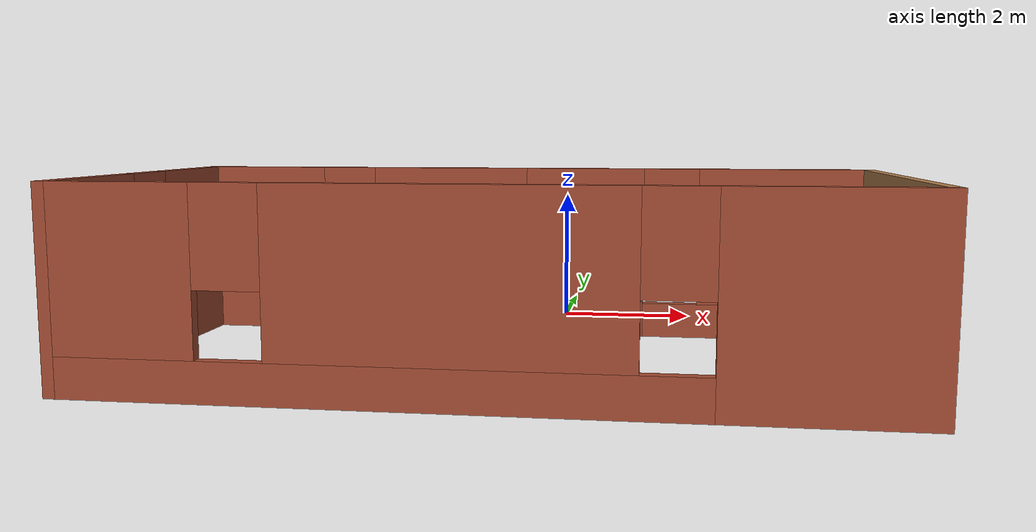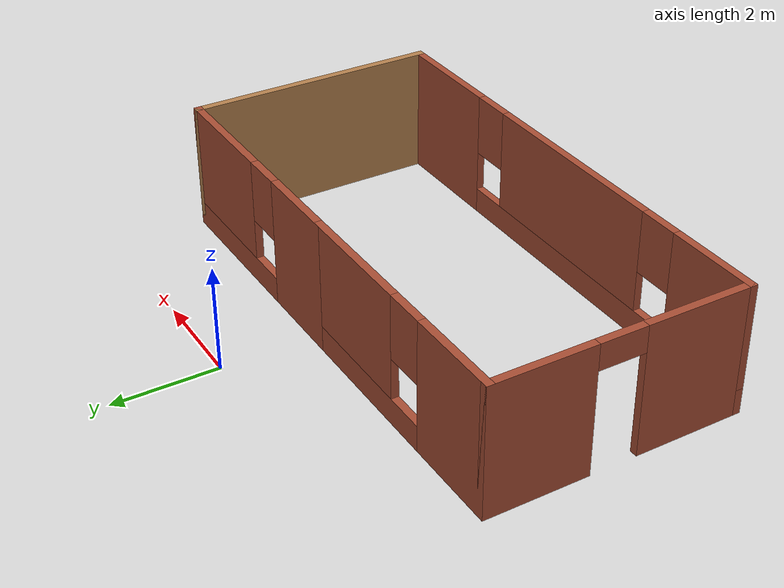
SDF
<?xml version='1.0'?>
<sdf version='1.7'>
  <model name='frist_world'>
    <pose>-0.445 -3.3625 0 0 -0 0</pose>
    <link name='Wall_0'>
      <pose>2.5 1.5625 0 0 -0 0</pose>
      <visual name='Wall_0_Visual_0'>
        <pose>-1.6313 0 1.25 0 -0 0</pose>
        <geometry>
          <box>
            <size>1.7374 0.15 2.5</size>
          </box>
        </geometry>
        <material>
          <script>
            <uri>file://media/materials/scripts/gazebo.material</uri>
            <name>Gazebo/Bricks</name>
          </script>
          <ambient>1 1 1 1</ambient>
        </material>
        <meta>
          <layer>0</layer>
        </meta>
      </visual>
      <collision name='Wall_0_Collision_0'>
        <geometry>
          <box>
            <size>1.7374 0.15 2.5</size>
          </box>
        </geometry>
        <pose>-1.6313 0 1.25 0 -0 0</pose>
      </collision>
      <visual name='Wall_0_Visual_1'>
        <pose>0.868699 0 0.25 0 -0 0</pose>
        <geometry>
          <box>
            <size>3.2626 0.15 0.5</size>
          </box>
        </geometry>
        <material>
          <script>
            <uri>file://media/materials/scripts/gazebo.material</uri>
            <name>Gazebo/Bricks</name>
          </script>
          <ambient>1 1 1 1</ambient>
        </material>
        <meta>
          <layer>0</layer>
        </meta>
      </visual>
      <collision name='Wall_0_Collision_1'>
        <geometry>
          <box>
            <size>3.2626 0.15 0.5</size>
          </box>
        </geometry>
        <pose>0.868699 0 0.25 0 -0 0</pose>
      </collision>
      <visual name='Wall_0_Visual_2'>
        <pose>1.2687 0 1.5 0 -0 0</pose>
        <geometry>
          <box>
            <size>2.4626 0.15 2</size>
          </box>
        </geometry>
        <material>
          <script>
            <uri>file://media/materials/scripts/gazebo.material</uri>
            <name>Gazebo/Bricks</name>
          </script>
          <ambient>1 1 1 1</ambient>
        </material>
        <meta>
          <layer>0</layer>
        </meta>
      </visual>
      <collision name='Wall_0_Collision_2'>
        <geometry>
          <box>
            <size>2.4626 0.15 2</size>
          </box>
        </geometry>
        <pose>1.2687 0 1.5 0 -0 0</pose>
      </collision>
      <visual name='Wall_0_Visual_3'>
        <pose>-0.362601 0 1.9 0 -0 0</pose>
        <geometry>
          <box>
            <size>0.8 0.15 1.2</size>
          </box>
        </geometry>
        <material>
          <script>
            <uri>file://media/materials/scripts/gazebo.material</uri>
            <name>Gazebo/Bricks</name>
          </script>
          <ambient>1 1 1 1</ambient>
        </material>
        <meta>
          <layer>0</layer>
        </meta>
      </visual>
      <collision name='Wall_0_Collision_3'>
        <geometry>
          <box>
            <size>0.8 0.15 1.2</size>
          </box>
        </geometry>
        <pose>-0.362601 0 1.9 0 -0 0</pose>
      </collision>
    </link>
    <link name='Wall_3'>
      <collision name='Wall_3_Collision'>
        <geometry>
          <box>
            <size>5 0.15 2.5</size>
          </box>
        </geometry>
        <pose>0 0 1.25 0 -0 0</pose>
      </collision>
      <visual name='Wall_3_Visual'>
        <pose>0 0 1.25 0 -0 0</pose>
        <geometry>
          <box>
            <size>5 0.15 2.5</size>
          </box>
        </geometry>
        <material>
          <script>
            <uri>file://media/materials/scripts/gazebo.material</uri>
            <name>Gazebo/Wood</name>
          </script>
          <ambient>1 1 1 1</ambient>
        </material>
        <meta>
          <layer>0</layer>
        </meta>
      </visual>
      <pose>4.925 -0.8625 0 0 -0 -1.5708</pose>
    </link>
    <link name='Wall_4'>
      <pose>-0 -3.2875 0 0 -0 3.14159</pose>
      <visual name='Wall_4_Visual_0'>
        <pose>-3.80224 0 1.25 0 -0 0</pose>
        <geometry>
          <box>
            <size>2.39552 0.15 2.5</size>
          </box>
        </geometry>
        <material>
          <script>
            <uri>file://media/materials/scripts/gazebo.material</uri>
            <name>Gazebo/Bricks</name>
          </script>
          <ambient>1 1 1 1</ambient>
        </material>
        <meta>
          <layer>0</layer>
        </meta>
      </visual>
      <collision name='Wall_4_Collision_0'>
        <geometry>
          <box>
            <size>2.39552 0.15 2.5</size>
          </box>
        </geometry>
        <pose>-3.80224 0 1.25 0 -0 0</pose>
      </collision>
      <visual name='Wall_4_Visual_1'>
        <pose>1.19776 0 0.25 0 -0 0</pose>
        <geometry>
          <box>
            <size>7.60448 0.15 0.5</size>
          </box>
        </geometry>
        <material>
          <script>
            <uri>file://media/materials/scripts/gazebo.material</uri>
            <name>Gazebo/Bricks</name>
          </script>
          <ambient>1 1 1 1</ambient>
        </material>
        <meta>
          <layer>0</layer>
        </meta>
      </visual>
      <collision name='Wall_4_Collision_1'>
        <geometry>
          <box>
            <size>7.60448 0.15 0.5</size>
          </box>
        </geometry>
        <pose>1.19776 0 0.25 0 -0 0</pose>
      </collision>
      <visual name='Wall_4_Visual_2'>
        <pose>0.272918 0 1.5 0 -0 0</pose>
        <geometry>
          <box>
            <size>4.1548 0.15 2</size>
          </box>
        </geometry>
        <material>
          <script>
            <uri>file://media/materials/scripts/gazebo.material</uri>
            <name>Gazebo/Bricks</name>
          </script>
          <ambient>1 1 1 1</ambient>
        </material>
        <meta>
          <layer>0</layer>
        </meta>
      </visual>
      <collision name='Wall_4_Collision_2'>
        <geometry>
          <box>
            <size>4.1548 0.15 2</size>
          </box>
        </geometry>
        <pose>0.272918 0 1.5 0 -0 0</pose>
      </collision>
      <visual name='Wall_4_Visual_3'>
        <pose>4.07516 0 1.5 0 -0 0</pose>
        <geometry>
          <box>
            <size>1.84968 0.15 2</size>
          </box>
        </geometry>
        <material>
          <script>
            <uri>file://media/materials/scripts/gazebo.material</uri>
            <name>Gazebo/Bricks</name>
          </script>
          <ambient>1 1 1 1</ambient>
        </material>
        <meta>
          <layer>0</layer>
        </meta>
      </visual>
      <collision name='Wall_4_Collision_3'>
        <geometry>
          <box>
            <size>1.84968 0.15 2</size>
          </box>
        </geometry>
        <pose>4.07516 0 1.5 0 -0 0</pose>
      </collision>
      <visual name='Wall_4_Visual_4'>
        <pose>-2.20448 0 1.9 0 -0 0</pose>
        <geometry>
          <box>
            <size>0.8 0.15 1.2</size>
          </box>
        </geometry>
        <material>
          <script>
            <uri>file://media/materials/scripts/gazebo.material</uri>
            <name>Gazebo/Bricks</name>
          </script>
          <ambient>1 1 1 1</ambient>
        </material>
        <meta>
          <layer>0</layer>
        </meta>
      </visual>
      <collision name='Wall_4_Collision_4'>
        <geometry>
          <box>
            <size>0.8 0.15 1.2</size>
          </box>
        </geometry>
        <pose>-2.20448 0 1.9 0 -0 0</pose>
      </collision>
      <visual name='Wall_4_Visual_5'>
        <pose>2.75032 0 1.9 0 -0 0</pose>
        <geometry>
          <box>
            <size>0.8 0.15 1.2</size>
          </box>
        </geometry>
        <material>
          <script>
            <uri>file://media/materials/scripts/gazebo.material</uri>
            <name>Gazebo/Bricks</name>
          </script>
          <ambient>1 1 1 1</ambient>
        </material>
        <meta>
          <layer>0</layer>
        </meta>
      </visual>
      <collision name='Wall_4_Collision_5'>
        <geometry>
          <box>
            <size>0.8 0.15 1.2</size>
          </box>
        </geometry>
        <pose>2.75032 0 1.9 0 -0 0</pose>
      </collision>
    </link>
    <link name='Wall_5'>
      <pose>-4.925 -0.8625 0 0 -0 1.5708</pose>
      <visual name='Wall_5_Visual_0'>
        <pose>-1.44013 0 1.25 0 -0 0</pose>
        <geometry>
          <box>
            <size>2.11974 0.15 2.5</size>
          </box>
        </geometry>
        <material>
          <script>
            <uri>file://media/materials/scripts/gazebo.material</uri>
            <name>Gazebo/Bricks</name>
          </script>
          <ambient>1 1 1 1</ambient>
        </material>
        <meta>
          <layer>0</layer>
        </meta>
      </visual>
      <collision name='Wall_5_Collision_0'>
        <geometry>
          <box>
            <size>2.11974 0.15 2.5</size>
          </box>
        </geometry>
        <pose>-1.44013 0 1.25 0 -0 0</pose>
      </collision>
      <visual name='Wall_5_Visual_1'>
        <pose>1.50987 0 1.25 0 -0 0</pose>
        <geometry>
          <box>
            <size>1.98026 0.15 2.5</size>
          </box>
        </geometry>
        <material>
          <script>
            <uri>file://media/materials/scripts/gazebo.material</uri>
            <name>Gazebo/Bricks</name>
          </script>
          <ambient>1 1 1 1</ambient>
        </material>
        <meta>
          <layer>0</layer>
        </meta>
      </visual>
      <collision name='Wall_5_Collision_1'>
        <geometry>
          <box>
            <size>1.98026 0.15 2.5</size>
          </box>
        </geometry>
        <pose>1.50987 0 1.25 0 -0 0</pose>
      </collision>
      <visual name='Wall_5_Visual_2'>
        <pose>0.069744 0 2.25 0 -0 0</pose>
        <geometry>
          <box>
            <size>0.9 0.15 0.5</size>
          </box>
        </geometry>
        <material>
          <script>
            <uri>file://media/materials/scripts/gazebo.material</uri>
            <name>Gazebo/Bricks</name>
          </script>
          <ambient>1 1 1 1</ambient>
        </material>
        <meta>
          <layer>0</layer>
        </meta>
      </visual>
      <collision name='Wall_5_Collision_2'>
        <geometry>
          <box>
            <size>0.9 0.15 0.5</size>
          </box>
        </geometry>
        <pose>0.069744 0 2.25 0 -0 0</pose>
      </collision>
    </link>
    <link name='Wall_6'>
      <pose>-2.425 1.5625 0 0 -0 0</pose>
      <visual name='Wall_6_Visual_0'>
        <pose>-1.64236 0 1.25 0 -0 0</pose>
        <geometry>
          <box>
            <size>1.86528 0.15 2.5</size>
          </box>
        </geometry>
        <material>
          <script>
            <uri>file://media/materials/scripts/gazebo.material</uri>
            <name>Gazebo/Bricks</name>
          </script>
          <ambient>1 1 1 1</ambient>
        </material>
        <meta>
          <layer>0</layer>
        </meta>
      </visual>
      <collision name='Wall_6_Collision_0'>
        <geometry>
          <box>
            <size>1.86528 0.15 2.5</size>
          </box>
        </geometry>
        <pose>-1.64236 0 1.25 0 -0 0</pose>
      </collision>
      <visual name='Wall_6_Visual_1'>
        <pose>0.93264 0 0.25 0 -0 0</pose>
        <geometry>
          <box>
            <size>3.28472 0.15 0.5</size>
          </box>
        </geometry>
        <material>
          <script>
            <uri>file://media/materials/scripts/gazebo.material</uri>
            <name>Gazebo/Bricks</name>
          </script>
          <ambient>1 1 1 1</ambient>
        </material>
        <meta>
          <layer>0</layer>
        </meta>
      </visual>
      <collision name='Wall_6_Collision_1'>
        <geometry>
          <box>
            <size>3.28472 0.15 0.5</size>
          </box>
        </geometry>
        <pose>0.93264 0 0.25 0 -0 0</pose>
      </collision>
      <visual name='Wall_6_Visual_2'>
        <pose>1.33264 0 1.5 0 -0 0</pose>
        <geometry>
          <box>
            <size>2.48472 0.15 2</size>
          </box>
        </geometry>
        <material>
          <script>
            <uri>file://media/materials/scripts/gazebo.material</uri>
            <name>Gazebo/Bricks</name>
          </script>
          <ambient>1 1 1 1</ambient>
        </material>
        <meta>
          <layer>0</layer>
        </meta>
      </visual>
      <collision name='Wall_6_Collision_2'>
        <geometry>
          <box>
            <size>2.48472 0.15 2</size>
          </box>
        </geometry>
        <pose>1.33264 0 1.5 0 -0 0</pose>
      </collision>
      <visual name='Wall_6_Visual_3'>
        <pose>-0.30972 0 1.9 0 -0 0</pose>
        <geometry>
          <box>
            <size>0.8 0.15 1.2</size>
          </box>
        </geometry>
        <material>
          <script>
            <uri>file://media/materials/scripts/gazebo.material</uri>
            <name>Gazebo/Bricks</name>
          </script>
          <ambient>1 1 1 1</ambient>
        </material>
        <meta>
          <layer>0</layer>
        </meta>
      </visual>
      <collision name='Wall_6_Collision_3'>
        <geometry>
          <box>
            <size>0.8 0.15 1.2</size>
          </box>
        </geometry>
        <pose>-0.30972 0 1.9 0 -0 0</pose>
      </collision>
    </link>
    <static>1</static>
  </model>
</sdf>
